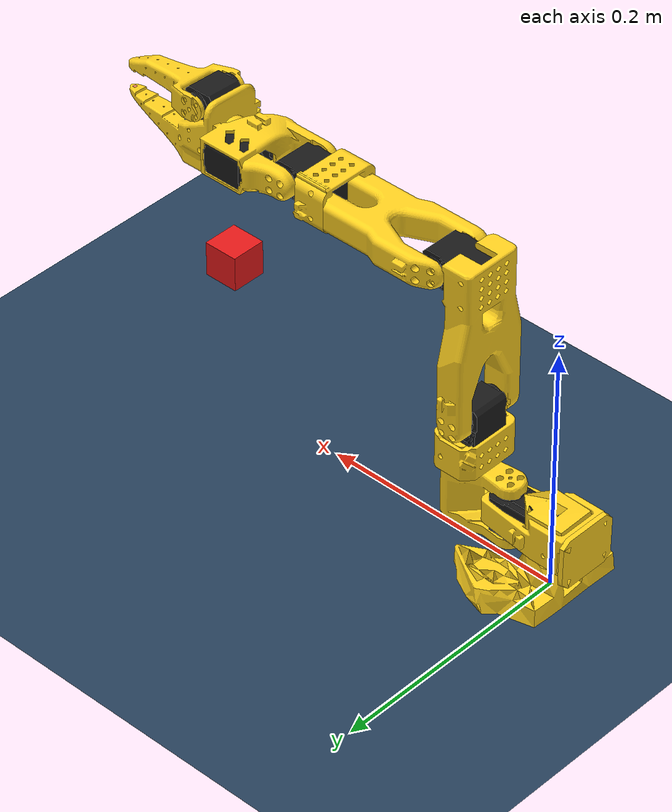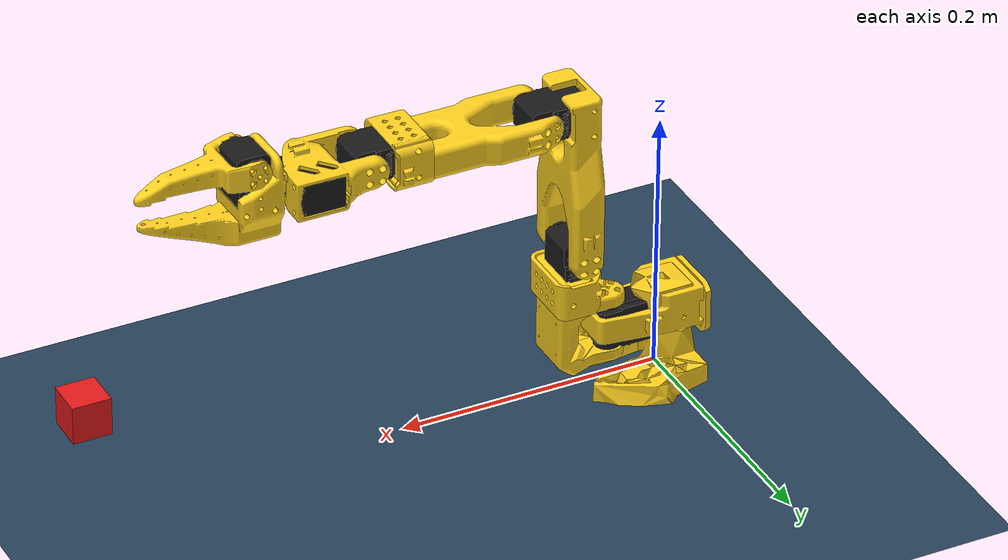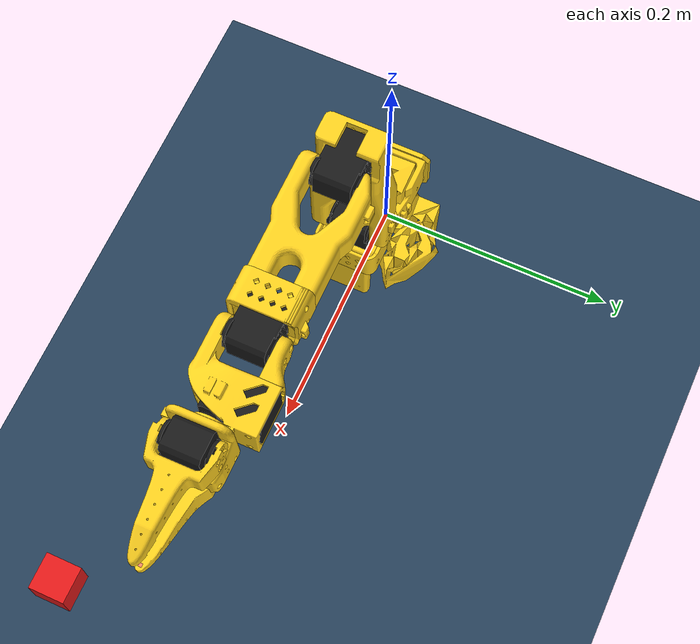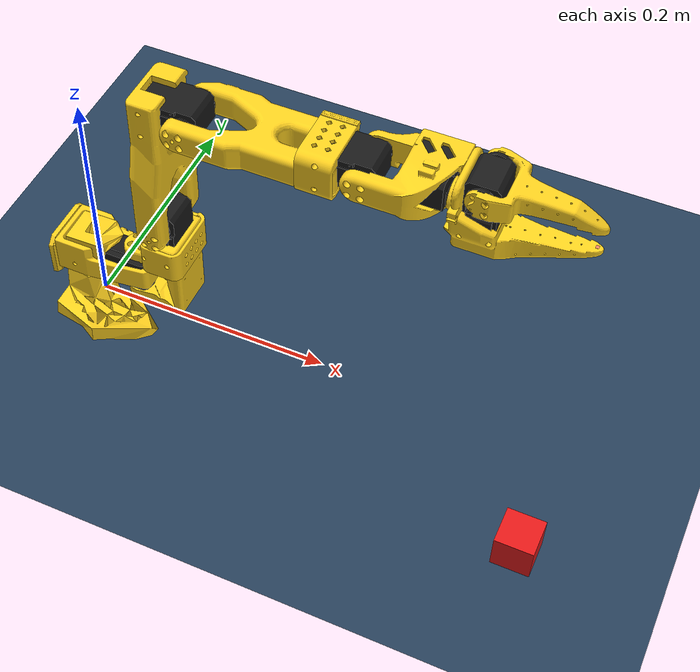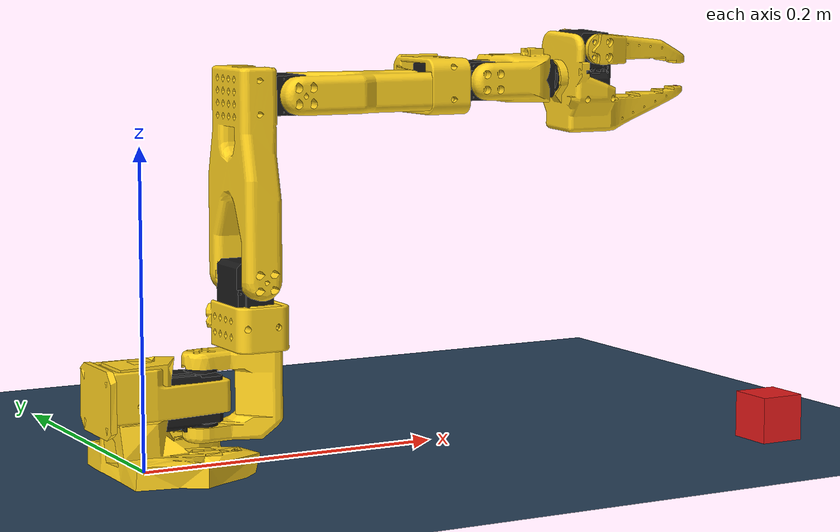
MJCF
<mujoco model="lift_cube_scene">
    <include file="so101_new_calib.xml" />

    <option timestep="0.002" gravity="0 0 -9.81" noslip_iterations="3" impratio="10" cone="elliptic"/>

    <default>
        <geom solref="0.001 1" solimp="0.99 0.99 0.001"/>
    </default>

    <visual>
        <headlight diffuse="0.6 0.6 0.6" ambient="0.3 0.3 0.3" specular="0 0 0" />
        <rgba haze="0.15 0.25 0.35 1" />
        <global azimuth="90" elevation="-20" offwidth="1280" offheight="720"/>
        <!-- znear=0.005 very small to avoid clipping through finger meshes -->
        <map znear="0.005" />
    </visual>

    <asset>
        <texture type="skybox" builtin="gradient" rgb1="0.3 0.5 0.7" rgb2="0 0 0" width="512" height="3072" />
        <texture type="2d" name="groundplane" builtin="checker" mark="edge" rgb1="0.2 0.3 0.4" rgb2="0.1 0.2 0.3" markrgb="0.8 0.8 0.8" width="300" height="300" />
        <material name="groundplane" texture="groundplane" texuniform="true" texrepeat="5 5" reflectance="0.2" />
        <material name="cube_material" rgba="0.9 0.1 0.1 1" />  <!-- red cube to match IRL -->
    </asset>

    <worldbody>
        <light pos="0 0 3.5" dir="0 0 -1" directional="true" />
        <geom name="floor" size="0 0 0.05" pos="0 0 0" type="plane" material="groundplane" />

        <!-- ORIGIN MARKER - bright green sphere at [0,0,0] (disabled for video) -->
        <geom name="origin_marker" type="sphere" size="0.02" pos="0 0 0.02" rgba="0 1 0 0" contype="0" conaffinity="0"/>

        <!-- FRONT BASE MARKER - red sphere at front edge of base, on table (disabled for video) -->
        <geom name="front_base_marker" type="sphere" size="0.015" pos="0.08 0 0.015" rgba="1 0 0 0" contype="0" conaffinity="0"/>

        <!-- Debug camera to see origin -->
        <camera name="origin_cam" pos="0.4 0.4 0.4" xyaxes="-1 1 0 -0.5 -0.5 1" fovy="60"/>

        <!-- Cube to pick up: 3x3x3cm (sized to fit gripper gap) -->
        <body name="cube" pos="0.40 -0.10 0.015">
            <freejoint name="cube_joint"/>
            <geom name="cube_geom" type="box" size="0.015 0.015 0.015" mass="0.03" material="cube_material" friction="0.5 0.05 0.001"/>  <!-- wood friction -->
        </body>
    </worldbody>

    <sensor>
        <!-- Cube position -->
        <framepos name="cube_pos" objtype="body" objname="cube" />
        <!-- Gripper TCP position (10cm in front of gripper) -->
        <framepos name="gripper_pos" objtype="site" objname="gripperframe" />
        <!-- Grasp point position (between fingers, for reach reward) -->
        <framepos name="grasp_pos" objtype="site" objname="graspframe" />
    </sensor>
</mujoco>

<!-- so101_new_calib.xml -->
<!-- Generated using onshape-to-robot -->
<!-- Onshape https://cad.onshape.com/documents/7715cc284bb430fe6dab4ffd/w/4fd0791b683777b02f8d975a/e/826c553ede3b7592eb9ca800 -->
<mujoco model="so101_new_calib">
  <compiler angle="radian" meshdir="assets" autolimits="true"/>
  <default>
    <default class="so101_new_calib">
      <joint damping="1" frictionloss="0.1" armature="0.005"/>
      <position kp="50"/>
      <default class="visual">
        <geom type="mesh" contype="1" conaffinity="1" group="2"/>
      </default>
      <default class="collision">
        <geom contype="1" conaffinity="1" group="3"/>
      </default>
    </default>
  </default>
  <!-- Additional joints_properties.xml -->
  <default>
    <default class="sts3215">
      <geom contype="0" conaffinity="0"/>
      <joint damping="0.60" frictionloss="0.052" armature="0.028"/>
      <position kp="998.22" kv="2.731" forcerange="-2.94 2.94"/>
    </default>
    <default class="backlash">
      <!-- +/- 0.5° of backlash -->
      <joint damping="0.01" frictionloss="0" armature="0.01" limited="true" range="-0.008726646259971648 0.008726646259971648"/>
    </default>
  </default>
  <worldbody>
    <!-- Link base -->
    <body name="base" pos="0 0 0" quat="1 0 0 0" childclass="so101_new_calib">
      <inertial pos="0.0137179 -5.19711e-05 0.0334843" mass="0.147" fullinertia="0.000114686 0.000136117 0.000130364 -4.59787e-07 4.97151e-06 9.75275e-08"/>
      <!-- Part base_motor_holder_so101_v1 -->
      <geom type="mesh" class="visual" pos="-0.00636471 -9.94414e-05 -0.0024" quat="0.5 0.5 0.5 0.5" mesh="base_motor_holder_so101_v1" material="base_motor_holder_so101_v1_material"/>
      <!-- Part base_so101_v2 -->
      <geom type="mesh" class="visual" pos="-0.00636471 -8.97657e-09 -0.0024" quat="0.5 0.5 0.5 0.5" mesh="base_so101_v2" material="base_so101_v2_material"/>
      <!-- Part sts3215_03a_v1 -->
      <geom type="mesh" class="visual" pos="0.0263353 -8.97657e-09 0.0437" quat="1 -2.85511e-16 -9.64433e-17 6.12908e-16" mesh="sts3215_03a_v1" material="sts3215_03a_v1_material"/>
      <!-- Part waveshare_mounting_plate_so101_v2 -->
      <geom type="mesh" class="visual" pos="-0.0309827 -0.000199441 0.0474" quat="0.5 0.5 0.5 0.5" mesh="waveshare_mounting_plate_so101_v2" material="waveshare_mounting_plate_so101_v2_material"/>
      <!-- Frame baseframe -->
      <site group="3" name="baseframe" pos="8.67362e-19 9.55596e-18 3.46945e-18" quat="1 -8.17396e-19 3.78392e-17 2.22045e-16"/>
      <!-- Link shoulder -->
      <body name="shoulder" pos="0.0388353 -8.97657e-09 0.0624" quat="3.56167e-16 1.22818e-15 -1 -4.14635e-16">
        <!-- Joint from base to shoulder -->
        <joint axis="0 0 1" name="shoulder_pan" type="hinge" range="-1.9198621771937616 1.9198621771937634" class="sts3215"/>
        <inertial pos="-0.0307604 -1.66727e-05 -0.0252713" mass="0.100006" fullinertia="8.3759e-05 8.10403e-05 2.39783e-05 7.55525e-08 -1.16342e-06 1.54663e-07"/>
        <!-- Part sts3215_03a_v1_2 -->
        <geom type="mesh" class="visual" pos="-0.0303992 0.000422241 -0.0417" quat="0.5 0.5 0.5 -0.5" mesh="sts3215_03a_v1" material="sts3215_03a_v1_material"/>
        <geom type="mesh" class="collision" pos="-0.0303992 0.000422241 -0.0417" quat="0.5 0.5 0.5 -0.5" mesh="sts3215_03a_v1" material="sts3215_03a_v1_material"/>
        <!-- Part motor_holder_so101_base_v1 -->
        <geom type="mesh" class="visual" pos="-0.0675992 -0.000177759 0.0158499" quat="0.5 0.5 -0.5 0.5" mesh="motor_holder_so101_base_v1" material="motor_holder_so101_base_v1_material"/>
        <geom type="mesh" class="collision" pos="-0.0675992 -0.000177759 0.0158499" quat="0.5 0.5 -0.5 0.5" mesh="motor_holder_so101_base_v1" material="motor_holder_so101_base_v1_material"/>
        <!-- Part rotation_pitch_so101_v1 -->
        <geom type="mesh" class="visual" pos="0.0122008 2.22413e-05 0.0464" quat="0.707107 -0.707107 -0 8.3163e-34" mesh="rotation_pitch_so101_v1" material="rotation_pitch_so101_v1_material"/>
        <geom type="mesh" class="collision" pos="0.0122008 2.22413e-05 0.0464" quat="0.707107 -0.707107 -0 8.3163e-34" mesh="rotation_pitch_so101_v1" material="rotation_pitch_so101_v1_material"/>
        <!-- Link upper_arm -->
        <body name="upper_arm" pos="-0.0303992 -0.0182778 -0.0542" quat="0.5 -0.5 -0.5 -0.5">
          <!-- Joint from shoulder to upper_arm -->
          <joint axis="0 0 1" name="shoulder_lift" type="hinge" range="-1.7453292519943224 1.7453292519943366" class="sts3215"/>
          <inertial pos="-0.0898471 -0.00838224 0.0184089" mass="0.103" fullinertia="4.08002e-05 0.000147318 0.000142487 -1.97819e-05 -4.03016e-08 8.97326e-09"/>
          <!-- Part sts3215_03a_v1_3 -->
          <geom type="mesh" class="visual" pos="-0.11257 -0.0155 0.0187" quat="4.56308e-16 -0.707107 0.707107 -1.37383e-16" mesh="sts3215_03a_v1" material="sts3215_03a_v1_material"/>
          <geom type="mesh" class="collision" pos="-0.11257 -0.0155 0.0187" quat="4.56308e-16 -0.707107 0.707107 -1.37383e-16" mesh="sts3215_03a_v1" material="sts3215_03a_v1_material"/>
          <!-- Part upper_arm_so101_v1 -->
          <geom type="mesh" class="visual" pos="-0.065085 0.012 0.0182" quat="0 1 0 0" mesh="upper_arm_so101_v1" material="upper_arm_so101_v1_material"/>
          <geom type="mesh" class="collision" pos="-0.065085 0.012 0.0182" quat="0 1 0 0" mesh="upper_arm_so101_v1" material="upper_arm_so101_v1_material"/>
          <!-- Link lower_arm -->
          <body name="lower_arm" pos="-0.11257 -0.028 1.73763e-16" quat="0.707107 -5.98613e-17 -2.58051e-17 0.707107">
            <!-- Joint from upper_arm to lower_arm -->
            <!-- Note: 5-degree calibration offset applied to joint range -->
            <joint axis="0 0 1" name="elbow_flex" type="hinge" range="-1.69 1.69" class="sts3215"/>
            <inertial pos="-0.0980701 0.00324376 0.0182831" mass="0.104" fullinertia="2.87438e-05 0.000159844 0.00014529 7.41152e-06 1.26409e-06 -4.90188e-08"/>
            <!-- Part under_arm_so101_v1 -->
            <geom type="mesh" class="visual" pos="-0.0648499 -0.032 0.0182" quat="0 1 0 0" mesh="under_arm_so101_v1" material="under_arm_so101_v1_material"/>
            <geom type="mesh" class="collision" pos="-0.0648499 -0.032 0.0182" quat="0 1 0 0" mesh="under_arm_so101_v1" material="under_arm_so101_v1_material"/>
            <!-- Part motor_holder_so101_wrist_v1 -->
            <geom type="mesh" class="visual" pos="-0.0648499 -0.032 0.018" quat="3.92687e-16 -1 -1.9186e-15 -6.38378e-16" mesh="motor_holder_so101_wrist_v1" material="motor_holder_so101_wrist_v1_material"/>
            <geom type="mesh" class="collision" pos="-0.0648499 -0.032 0.018" quat="3.92687e-16 -1 -1.9186e-15 -6.38378e-16" mesh="motor_holder_so101_wrist_v1" material="motor_holder_so101_wrist_v1_material"/>
            <!-- Part sts3215_03a_v1_4 -->
            <geom type="mesh" class="visual" pos="-0.1224 0.0052 0.0187" quat="7.21645e-16 1.56949e-15 1 -3.33067e-16" mesh="sts3215_03a_v1" material="sts3215_03a_v1_material"/>
            <geom type="mesh" class="collision" pos="-0.1224 0.0052 0.0187" quat="7.21645e-16 1.56949e-15 1 -3.33067e-16" mesh="sts3215_03a_v1" material="sts3215_03a_v1_material"/>
            <!-- Link wrist -->
            <body name="wrist" pos="-0.1349 0.0052 3.62355e-17" quat="0.707107 9.58722e-16 -7.51313e-16 -0.707107">
              <!-- Joint from lower_arm to wrist -->
              <joint axis="0 0 1" name="wrist_flex" type="hinge" range="-1.6580628494556928 1.6580627293335335" class="sts3215"/>
              <inertial pos="-0.000103312 -0.0386143 0.0281156" mass="0.079" fullinertia="3.68263e-05 2.5391e-05 2.1e-05 1.7893e-08 -5.28128e-08 3.6412e-06"/>
              <!-- Part sts3215_03a_no_horn_v1 -->
              <geom type="mesh" class="visual" pos="8.32667e-17 -0.0424 0.0306" quat="0.5 0.5 0.5 -0.5" mesh="sts3215_03a_no_horn_v1" material="sts3215_03a_no_horn_v1_material"/>
              <geom type="mesh" class="collision" pos="8.32667e-17 -0.0424 0.0306" quat="0.5 0.5 0.5 -0.5" mesh="sts3215_03a_no_horn_v1" material="sts3215_03a_no_horn_v1_material"/>
              <!-- Part wrist_roll_pitch_so101_v2 -->
              <geom type="mesh" class="visual" pos="0 -0.028 0.0181" quat="0.5 -0.5 -0.5 -0.5" mesh="wrist_roll_pitch_so101_v2" material="wrist_roll_pitch_so101_v2_material"/>
              <geom type="mesh" class="collision" pos="0 -0.028 0.0181" quat="0.5 -0.5 -0.5 -0.5" mesh="wrist_roll_pitch_so101_v2" material="wrist_roll_pitch_so101_v2_material"/>
              <!-- Link gripper -->
              <body name="gripper" pos="5.55112e-17 -0.0611 0.0181" quat="0.0172091 -0.0172091 0.706897 0.706897">
                <!-- Joint from wrist to gripper -->
                <joint axis="0 0 1" name="wrist_roll" type="hinge" range="-2.7438472969992493 2.841206309382605" class="sts3215"/>
                <inertial pos="0.000213627 0.000245138 -0.025187" mass="0.087" fullinertia="2.75087e-05 4.33657e-05 3.45059e-05 -3.35241e-07 -5.7352e-06 -5.17847e-08"/>
                <!-- Part sts3215_03a_v1_5 -->
                <geom type="mesh" class="visual" pos="0.0077 0.0001 -0.0234" quat="0.707107 -0.707107 1.66015e-15 6.45094e-15" mesh="sts3215_03a_v1" material="sts3215_03a_v1_material"/>
                <geom type="mesh" class="collision" pos="0.0077 0.0001 -0.0234" quat="0.707107 -0.707107 1.66015e-15 6.45094e-15" mesh="sts3215_03a_v1" material="sts3215_03a_v1_material"/>
                <!-- Part wrist_roll_follower_so101_v1 -->
                <geom type="mesh" class="visual" pos="8.32667e-17 -0.000218214 0.000949706" quat="0 1 0 0" mesh="wrist_roll_follower_so101_v1" material="wrist_roll_follower_so101_v1_material"/>
                <geom type="mesh" class="collision" pos="8.32667e-17 -0.000218214 0.000949706" quat="0 1 0 0" mesh="wrist_roll_follower_so101_v1" material="wrist_roll_follower_so101_v1_material"/>
                <!-- Frame gripperframe (TCP - tool center point, 10cm in front, centered between fingers) -->
                <site group="3" name="gripperframe" pos="0.0 0.0 -0.0981274" quat="0.707107 -0 0.707107 -2.37788e-17"/>
                <!-- Frame graspframe (midpoint between fingers, for RL reach reward) -->
                <site group="3" name="graspframe" pos="0.002338 0.000055 -0.037843" quat="0.707107 -0 0.707107 -2.37788e-17"/>
                <!-- Wrist camera (calibrated v4: matches real innoMaker 130° camera at 640x480) -->
                <!-- v5: B=6.5cm, pitch=+22.8° (MuJoCo euler sign opposite scipy) -->
                <camera name="wrist_cam" pos="0.008 -0.065 -0.019" euler="0.398 0 3.14159" fovy="70.5"/>
                <!-- Static fingertip (max mesh-local Z vertices) -->
                <site group="3" name="static_fingertip" pos="-0.012 0.0 -0.104" rgba="1 0 0 1" size="0.005"/>
                <!-- Static finger collision pad (box for stable contact) -->
                <geom name="static_finger_pad" type="box" size="0.00125 0.00125 0.00125" pos="-0.008875 0.0 -0.100" rgba="1 0.5 0.5 0.8" friction="1 0.05 0.001"/>
                <!-- Link moving_jaw_so101_v1 -->
                <body name="moving_jaw_so101_v1" pos="0.0202 0.0188 -0.0234" quat="0.707107 0.707107 -1.85362e-08 1.85362e-08">
                  <!-- Joint from gripper to moving_jaw_so101_v1 -->
                  <joint axis="0 0 1" name="gripper" type="hinge" range="-0.17453297762778586 1.7453291995659765" class="sts3215"/>
                  <inertial pos="-0.00157495 -0.0300244 0.0192755" mass="0.012" fullinertia="6.61427e-06 1.89032e-06 5.28738e-06 -3.19807e-07 -5.90717e-09 -1.09945e-07"/>
                  <!-- Part moving_jaw_so101_v1 -->
                  <geom type="mesh" class="visual" pos="-5.55112e-17 -5.55112e-17 0.0189" quat="1 -0 3.00524e-16 -2.00834e-17" mesh="moving_jaw_so101_v1" material="moving_jaw_so101_v1_material"/>
                  <geom type="mesh" class="collision" pos="-5.55112e-17 -5.55112e-17 0.0189" quat="1 -0 3.00524e-16 -2.00834e-17" mesh="moving_jaw_so101_v1" material="moving_jaw_so101_v1_material"/>
                  <!-- Moving fingertip (closest to static fingertip) -->
                  <site group="3" name="moving_fingertip" pos="-0.011 -0.076 0.019" rgba="0 0 1 1" size="0.005"/>
                  <!-- Moving finger collision pad (box for stable contact) -->
                  <!-- X shifted so +X face protrudes 0.2mm inward -->
                  <geom name="moving_finger_pad" type="box" size="0.00125 0.00125 0.00125" pos="-0.01136 -0.076 0.019" rgba="0.5 0.5 1 0.8" friction="1 0.05 0.001"/>
                </body>
              </body>
            </body>
          </body>
        </body>
      </body>
    </body>
  </worldbody>
  <asset>
    <mesh file="waveshare_mounting_plate_so101_v2.stl"/>
    <mesh file="sts3215_03a_v1.stl"/>
    <mesh file="motor_holder_so101_base_v1.stl"/>
    <mesh file="wrist_roll_follower_so101_v1.stl"/>
    <mesh file="moving_jaw_so101_v1.stl"/>
    <mesh file="base_motor_holder_so101_v1.stl"/>
    <mesh file="upper_arm_so101_v1.stl"/>
    <mesh file="wrist_roll_pitch_so101_v2.stl"/>
    <mesh file="under_arm_so101_v1.stl"/>
    <mesh file="rotation_pitch_so101_v1.stl"/>
    <mesh file="motor_holder_so101_wrist_v1.stl"/>
    <mesh file="sts3215_03a_no_horn_v1.stl"/>
    <mesh file="base_so101_v2.stl"/>
    <material name="base_motor_holder_so101_v1_material" rgba="1 0.82 0.12 1"/>
    <material name="base_so101_v2_material" rgba="1 0.82 0.12 1"/>
    <material name="sts3215_03a_v1_material" rgba="0.1 0.1 0.1 1"/>
    <material name="waveshare_mounting_plate_so101_v2_material" rgba="1 0.82 0.12 1"/>
    <material name="motor_holder_so101_base_v1_material" rgba="1 0.82 0.12 1"/>
    <material name="rotation_pitch_so101_v1_material" rgba="1 0.82 0.12 1"/>
    <material name="upper_arm_so101_v1_material" rgba="1 0.82 0.12 1"/>
    <material name="under_arm_so101_v1_material" rgba="1 0.82 0.12 1"/>
    <material name="motor_holder_so101_wrist_v1_material" rgba="1 0.82 0.12 1"/>
    <material name="sts3215_03a_no_horn_v1_material" rgba="0.1 0.1 0.1 1.0"/>
    <material name="wrist_roll_pitch_so101_v2_material" rgba="1 0.82 0.12 1"/>
    <material name="wrist_roll_follower_so101_v1_material" rgba="1 0.82 0.12 1"/>
    <material name="moving_jaw_so101_v1_material" rgba="1 0.82 0.12 1"/>
  </asset>
  <actuator>
    <position class="sts3215" name="shoulder_pan" joint="shoulder_pan" forcerange="-3.35 3.35" ctrlrange="-1.91986 1.91986"/>
    <position class="sts3215" name="shoulder_lift" joint="shoulder_lift" forcerange="-3.35 3.35" ctrlrange="-1.74533 1.74533"/>
    <position class="sts3215" name="elbow_flex" joint="elbow_flex" forcerange="-3.35 3.35" ctrlrange="-1.69 1.69"/>
    <position class="sts3215" name="wrist_flex" joint="wrist_flex" forcerange="-3.35 3.35" ctrlrange="-1.65806 1.65806"/>
    <position class="sts3215" name="wrist_roll" joint="wrist_roll" forcerange="-3.35 3.35" ctrlrange="-2.74385 2.84121"/>
    <position class="sts3215" name="gripper" joint="gripper" forcerange="-10 10" ctrlrange="-0.17453 1.74533"/>
  </actuator>
  <equality/>
  <contact>
    <!-- Exclude self-collision between adjacent arm bodies -->
    <exclude body1="base" body2="shoulder"/>
    <exclude body1="shoulder" body2="upper_arm"/>
    <exclude body1="upper_arm" body2="lower_arm"/>
    <exclude body1="lower_arm" body2="wrist"/>
    <exclude body1="wrist" body2="gripper"/>
    <exclude body1="gripper" body2="moving_jaw_so101_v1"/>
  </contact>
</mujoco>
